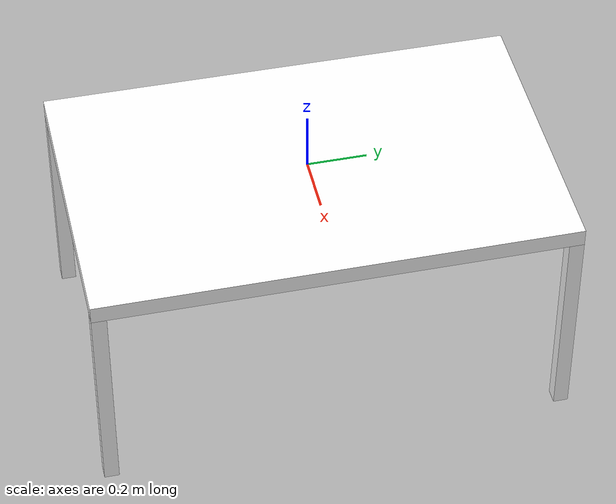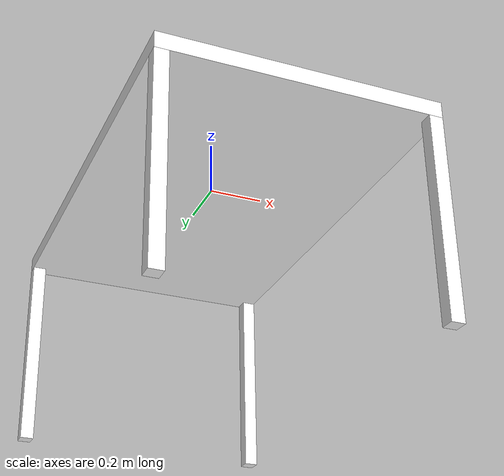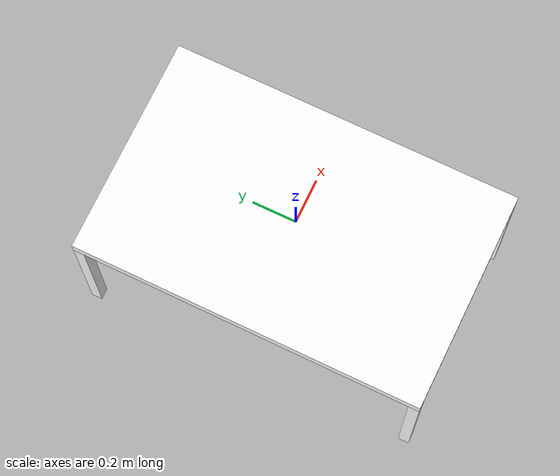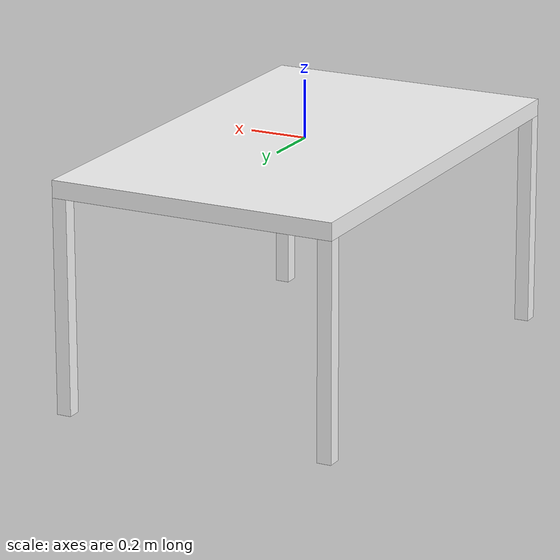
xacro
<?xml version="1.0"?>
<robot xmlns:xacro="http://www.ros.org/wiki/xacro" name="desk">

    <xacro:property name="desk_height" value="0.80" />
    <xacro:property name="plate_thick" value="0.06" />
    <xacro:property name="plate_width" value="1.00" />
    <xacro:property name="plate_length" value="1.60" />
    <xacro:property name="legwid" value="0.05" />
    <xacro:property name="leglen" value="${desk_height-plate_thick}" />
    <xacro:macro name="default_inertial" params="mass">
        <inertial>
        <mass value="${mass}" />
        <inertia ixx="1.0" ixy="0.0" ixz="0.0" iyy="1.0" iyz="0.0" izz="1.0" />
        </inertial>
    </xacro:macro>
    <material name="white">
        <color rgba="1 1 1 1"/>
    </material>
    <xacro:macro name="leg" params="prefix x_axis y_axis">
        <link name="${prefix}_leg">
            <visual>
                <geometry>
                    <box size="${legwid} ${legwid} ${leglen}"/>
                </geometry>
                <origin xyz="0 0 ${-leglen/2}" rpy="0 0 0"/>
                <material name="white"/>
            </visual>
            <collision>
                <geometry>
                    <box size="${legwid} ${legwid} ${leglen-0.01}"/>
                </geometry>
                <origin xyz="0 0 ${-leglen/2}" rpy="0 0 0"/>
            </collision>
            <xacro:default_inertial mass="1"/>
        </link>

        <joint name="base_to_${prefix}_leg" type="fixed">
            <parent link="plate"/>
            <child link="${prefix}_leg"/>
            <origin xyz="${x_axis*(plate_width-legwid)/2} ${y_axis*(plate_length-legwid)/2} ${-plate_thick}" />
        </joint>
        <gazebo reference="${prefix}_leg">
            <mu1>1.0</mu1>
            <mu2>1.0</mu2>
            <material>Gazebo/Wood</material>
        </gazebo>
        <!-- A bunch of stuff cut -->
    </xacro:macro>
    <xacro:leg prefix="right_front" x_axis="1" y_axis="-1" />
    <xacro:leg prefix="left_front" x_axis="1" y_axis="1" />
    <xacro:leg prefix="right_back" x_axis="-1" y_axis="-1" />
    <xacro:leg prefix="left_back" x_axis="-1" y_axis="1" />

    <link name="plate">
        <visual>
            <origin xyz="0.0 0.0 ${-plate_thick/2}" rpy="0.0 0.0 0.0"/>
            <geometry>
                <box size="${plate_width} ${plate_length} ${plate_thick}"/>
            </geometry>
            <material name="white"/>
        </visual>
        <collision>
            <origin xyz="0.0 0.0 ${-plate_thick/2}" rpy="0.0 0.0 0.0"/>
            <geometry>
                <box size="${plate_width} ${plate_length} ${plate_thick}"/>
            </geometry>
        </collision>
        <xacro:default_inertial mass="5"/>
    </link>
    <gazebo reference="plate">
        <mu1>0.2</mu1>
        <mu2>0.2</mu2>
        <material>Gazebo/Yellow</material>
    </gazebo>

</robot>
